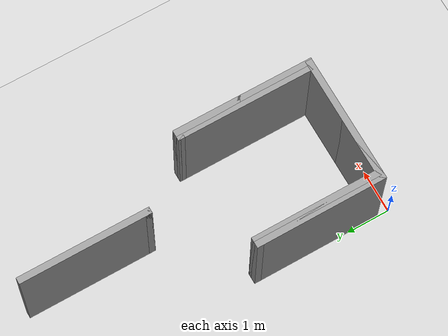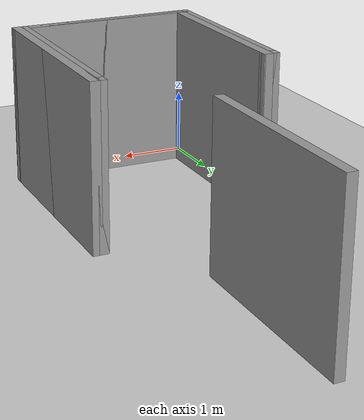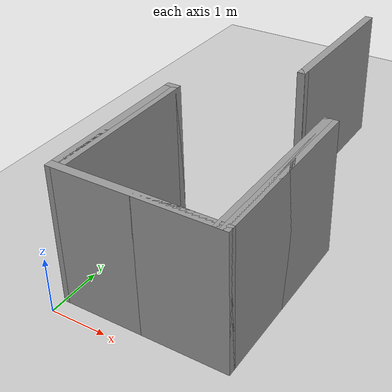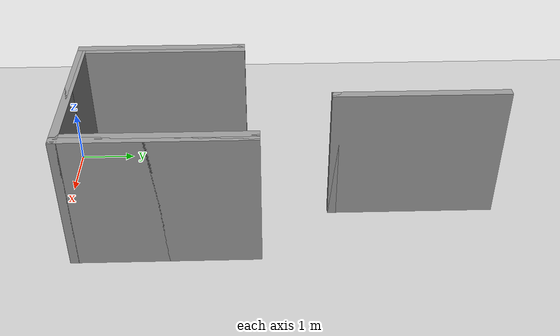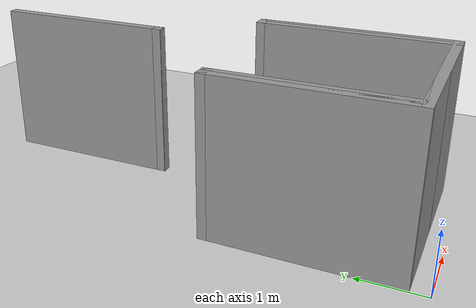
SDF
<sdf version="1.4">
  <world name="default">

    <scene>
      <ambient>0.4 0.4 0.4 1</ambient>
      <background>0.7 0.7 0.7 1</background>
      <shadows>true</shadows>
    </scene>

    <!-- A global light source -->
    <include>
      <uri>model://sun</uri>
    </include>

    <!-- A ground plane -->
    <include>
      <uri>model://ground_plane</uri>
    </include>

    <!-- A ground plane -->
    <include>
      <uri>model://Open_Track</uri>
	  <pose> 1.5 4 0 0 0 -1.57 </pose>
    </include>

    <physics type="ode">
      <real_time_update_rate>1000.0</real_time_update_rate>
      <max_step_size>0.001</max_step_size>
      <real_time_factor>1</real_time_factor>
      <ode>
        <solver>
          <type>quick</type>
          <iters>150</iters>
          <precon_iters>0</precon_iters>
          <sor>1.400000</sor>
          <use_dynamic_moi_rescaling>1</use_dynamic_moi_rescaling>
        </solver>
        <constraints>
          <cfm>0.00001</cfm>
          <erp>0.2</erp>
          <contact_max_correcting_vel>2000.000000</contact_max_correcting_vel>
          <contact_surface_layer>0.01000</contact_surface_layer>
        </constraints>
      </ode>
    </physics>
  </world>

</sdf>

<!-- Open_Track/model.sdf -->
<sdf version='1.6'>
  <model name='Open_Track'>
    <pose frame=''>-0.89 -2.345 0 0 -0 0</pose>
    <link name='Wall_0'>
      <collision name='Wall_0_Collision'>
        <geometry>
          <box>
            <size>3 0.15 2.5</size>
          </box>
        </geometry>
        <pose frame=''>0 0 1.25 0 -0 0</pose>
      </collision>
      <visual name='Wall_0_Visual'>
        <pose frame=''>0 0 1.25 0 -0 0</pose>
        <geometry>
          <box>
            <size>3 0.15 2.5</size>
          </box>
        </geometry>
        <material>
          <script>
            <uri>file://media/materials/scripts/gazebo.material</uri>
            <name>Gazebo/Grey</name>
          </script>
          <ambient>1 1 1 1</ambient>
        </material>
        <meta>
          <layer>0</layer>
        </meta>
      </visual>
      <pose frame=''>-2.225 0.245 0 0 -0 0</pose>
    </link>
    <link name='Wall_1'>
      <collision name='Wall_1_Collision'>
        <geometry>
          <box>
            <size>0.15 0.15 2.5</size>
          </box>
        </geometry>
        <pose frame=''>0 0 1.25 0 -0 0</pose>
      </collision>
      <visual name='Wall_1_Visual'>
        <pose frame=''>0 0 1.25 0 -0 0</pose>
        <geometry>
          <box>
            <size>0.15 0.15 2.5</size>
          </box>
        </geometry>
        <material>
          <script>
            <uri>file://media/materials/scripts/gazebo.material</uri>
            <name>Gazebo/Grey</name>
          </script>
          <ambient>1 1 1 1</ambient>
        </material>
        <meta>
          <layer>0</layer>
        </meta>
      </visual>
      <pose frame=''>-0.8 0.245 0 0 -0 0</pose>
    </link>
    <link name='Wall_10'>
      <collision name='Wall_10_Collision'>
        <geometry>
          <box>
            <size>0.25 0.15 2.5</size>
          </box>
        </geometry>
        <pose frame=''>0 0 1.25 0 -0 0</pose>
      </collision>
      <visual name='Wall_10_Visual'>
        <pose frame=''>0 0 1.25 0 -0 0</pose>
        <geometry>
          <box>
            <size>0.25 0.15 2.5</size>
          </box>
        </geometry>
        <material>
          <script>
            <uri>file://media/materials/scripts/gazebo.material</uri>
            <name>Gazebo/Grey</name>
          </script>
          <ambient>1 1 1 1</ambient>
        </material>
        <meta>
          <layer>0</layer>
        </meta>
      </visual>
      <pose frame=''>0.55 1.375 0 0 -0 -1.5708</pose>
    </link>
    <link name='Wall_11'>
      <collision name='Wall_11_Collision'>
        <geometry>
          <box>
            <size>3.25 0.15 2.5</size>
          </box>
        </geometry>
        <pose frame=''>0 0 1.25 0 -0 0</pose>
      </collision>
      <visual name='Wall_11_Visual'>
        <pose frame=''>0 0 1.25 0 -0 0</pose>
        <geometry>
          <box>
            <size>3.25 0.15 2.5</size>
          </box>
        </geometry>
        <material>
          <script>
            <uri>file://media/materials/scripts/gazebo.material</uri>
            <name>Gazebo/Grey</name>
          </script>
          <ambient>1 1 1 1</ambient>
        </material>
        <meta>
          <layer>0</layer>
        </meta>
      </visual>
      <pose frame=''>2.1 1.325 0 0 -0 0</pose>
    </link>
    <link name='Wall_12'>
      <collision name='Wall_12_Collision'>
        <geometry>
          <box>
            <size>0.15 0.15 2.5</size>
          </box>
        </geometry>
        <pose frame=''>0 0 1.25 0 -0 0</pose>
      </collision>
      <visual name='Wall_12_Visual'>
        <pose frame=''>0 0 1.25 0 -0 0</pose>
        <geometry>
          <box>
            <size>0.15 0.15 2.5</size>
          </box>
        </geometry>
        <material>
          <script>
            <uri>file://media/materials/scripts/gazebo.material</uri>
            <name>Gazebo/Grey</name>
          </script>
          <ambient>1 1 1 1</ambient>
        </material>
        <meta>
          <layer>0</layer>
        </meta>
      </visual>
      <pose frame=''>3.65 1.325 0 0 -0 0</pose>
    </link>
    <link name='Wall_3'>
      <collision name='Wall_3_Collision'>
        <geometry>
          <box>
            <size>3.25 0.15 2.5</size>
          </box>
        </geometry>
        <pose frame=''>0 0 1.25 0 -0 0</pose>
      </collision>
      <visual name='Wall_3_Visual'>
        <pose frame=''>0 0 1.25 0 -0 0</pose>
        <geometry>
          <box>
            <size>3.25 0.15 2.5</size>
          </box>
        </geometry>
        <material>
          <script>
            <uri>file://media/materials/scripts/gazebo.material</uri>
            <name>Gazebo/Grey</name>
          </script>
          <ambient>1 1 1 1</ambient>
        </material>
        <meta>
          <layer>0</layer>
        </meta>
      </visual>
      <pose frame=''>2.1 1.425 0 0 -0 0</pose>
    </link>
    <link name='Wall_4'>
      <collision name='Wall_4_Collision'>
        <geometry>
          <box>
            <size>3 0.15 2.5</size>
          </box>
        </geometry>
        <pose frame=''>0 0 1.25 0 -0 0</pose>
      </collision>
      <visual name='Wall_4_Visual'>
        <pose frame=''>0 0 1.25 0 -0 0</pose>
        <geometry>
          <box>
            <size>3 0.15 2.5</size>
          </box>
        </geometry>
        <material>
          <script>
            <uri>file://media/materials/scripts/gazebo.material</uri>
            <name>Gazebo/Grey</name>
          </script>
          <ambient>1 1 1 1</ambient>
        </material>
        <meta>
          <layer>0</layer>
        </meta>
      </visual>
      <pose frame=''>3.65 0 0 0 -0 -1.5708</pose>
    </link>
    <link name='Wall_5'>
      <collision name='Wall_5_Collision'>
        <geometry>
          <box>
            <size>3 0.15 2.5</size>
          </box>
        </geometry>
        <pose frame=''>0 0 1.25 0 -0 0</pose>
      </collision>
      <visual name='Wall_5_Visual'>
        <pose frame=''>0 0 1.25 0 -0 0</pose>
        <geometry>
          <box>
            <size>3 0.15 2.5</size>
          </box>
        </geometry>
        <material>
          <script>
            <uri>file://media/materials/scripts/gazebo.material</uri>
            <name>Gazebo/Grey</name>
          </script>
          <ambient>1 1 1 1</ambient>
        </material>
        <meta>
          <layer>0</layer>
        </meta>
      </visual>
      <pose frame=''>2.225 -1.425 0 0 -0 3.14159</pose>
    </link>
    <link name='Wall_6'>
      <collision name='Wall_6_Collision'>
        <geometry>
          <box>
            <size>0.25 0.15 2.5</size>
          </box>
        </geometry>
        <pose frame=''>0 0 1.25 0 -0 0</pose>
      </collision>
      <visual name='Wall_6_Visual'>
        <pose frame=''>0 0 1.25 0 -0 0</pose>
        <geometry>
          <box>
            <size>0.25 0.15 2.5</size>
          </box>
        </geometry>
        <material>
          <script>
            <uri>file://media/materials/scripts/gazebo.material</uri>
            <name>Gazebo/Grey</name>
          </script>
          <ambient>1 1 1 1</ambient>
        </material>
        <meta>
          <layer>0</layer>
        </meta>
      </visual>
      <pose frame=''>0.8 -1.375 0 0 -0 1.5708</pose>
    </link>
    <link name='Wall_7'>
      <collision name='Wall_7_Collision'>
        <geometry>
          <box>
            <size>3 0.15 2.5</size>
          </box>
        </geometry>
        <pose frame=''>0 0 1.25 0 -0 0</pose>
      </collision>
      <visual name='Wall_7_Visual'>
        <pose frame=''>0 0 1.25 0 -0 0</pose>
        <geometry>
          <box>
            <size>3 0.15 2.5</size>
          </box>
        </geometry>
        <material>
          <script>
            <uri>file://media/materials/scripts/gazebo.material</uri>
            <name>Gazebo/Grey</name>
          </script>
          <ambient>1 1 1 1</ambient>
        </material>
        <meta>
          <layer>0</layer>
        </meta>
      </visual>
      <pose frame=''>2.225 -1.325 0 0 -0 0</pose>
    </link>
    <link name='Wall_8'>
      <collision name='Wall_8_Collision'>
        <geometry>
          <box>
            <size>2.9 0.15 2.5</size>
          </box>
        </geometry>
        <pose frame=''>0 0 1.25 0 -0 0</pose>
      </collision>
      <visual name='Wall_8_Visual'>
        <pose frame=''>0 0 1.25 0 -0 0</pose>
        <geometry>
          <box>
            <size>2.9 0.15 2.5</size>
          </box>
        </geometry>
        <material>
          <script>
            <uri>file://media/materials/scripts/gazebo.material</uri>
            <name>Gazebo/Grey</name>
          </script>
          <ambient>1 1 1 1</ambient>
        </material>
        <meta>
          <layer>0</layer>
        </meta>
      </visual>
      <pose frame=''>3.65 0.05 0 0 -0 1.5708</pose>
    </link>
    <link name='Wall_9'>
      <collision name='Wall_9_Collision'>
        <geometry>
          <box>
            <size>3.25 0.15 2.5</size>
          </box>
        </geometry>
        <pose frame=''>0 0 1.25 0 -0 0</pose>
      </collision>
      <visual name='Wall_9_Visual'>
        <pose frame=''>0 0 1.25 0 -0 0</pose>
        <geometry>
          <box>
            <size>3.25 0.15 2.5</size>
          </box>
        </geometry>
        <material>
          <script>
            <uri>file://media/materials/scripts/gazebo.material</uri>
            <name>Gazebo/Grey</name>
          </script>
          <ambient>1 1 1 1</ambient>
        </material>
        <meta>
          <layer>0</layer>
        </meta>
      </visual>
      <pose frame=''>2.1 1.425 0 0 -0 3.14159</pose>
    </link>
    <static>1</static>
  </model>
</sdf>
